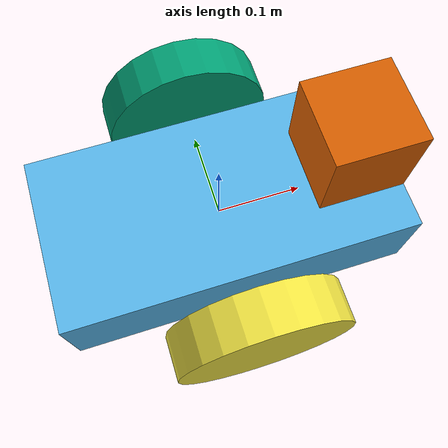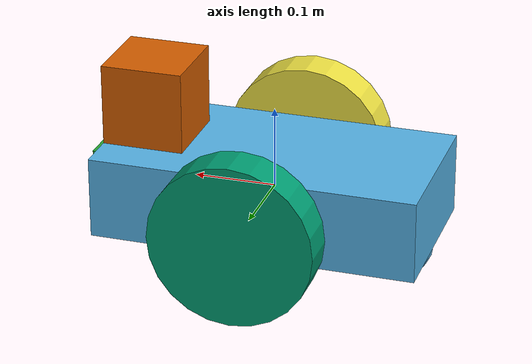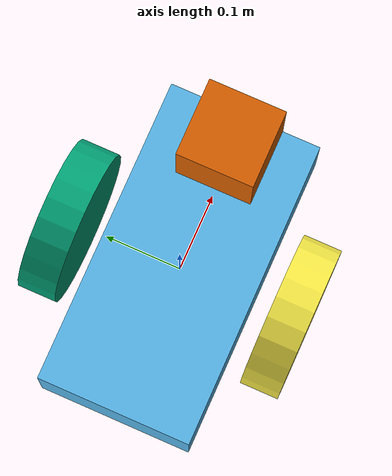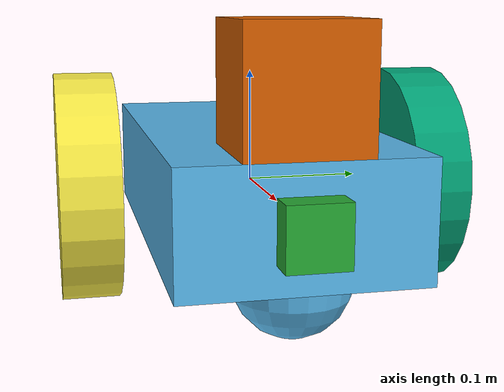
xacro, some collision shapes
<?xml version='1.0'?>

<robot name="udacity_bot" xmlns:xacro="http://www.ros.org/wiki/xacro">
<xacro:include filename="$(find udacity_bot)/urdf/udacity_bot.gazebo" />

  <link name="robot_footprint"></link>

  <joint name="robot_footprint_joint" type="fixed">
    <origin xyz="0 0 0" rpy="0 0 0" />
    <parent link="robot_footprint"/>
    <child link="chassis" />
  </joint>

  <link name='chassis'>
    <pose>0 0 0.1 0 0 0</pose>

    <inertial>
      <mass value="15.0"/>
      <origin xyz="0.0 0 0" rpy=" 0 0 0"/>
      <inertia
          ixx="0.1" ixy="0" ixz="0"
          iyy="0.1" iyz="0"
          izz="0.1"
      />
    </inertial>

    <collision name='collision'>
      <origin xyz="0 0 0" rpy=" 0 0 0"/>
      <geometry>
        <box size=".4 .2 .1"/>
      </geometry>
    </collision>

    <visual name='chassis_visual'>
      <origin xyz="0 0 0" rpy=" 0 0 0"/>
      <geometry>
        <box size=".4 .2 .1"/>
      </geometry>
    </visual>

    <collision name='back_caster_collision'>
      <origin xyz="-0.15 0 -0.049" rpy=" 0 0 0"/>
      <geometry>
        <sphere radius="0.05"/>
      </geometry>
      <surface>
        <friction>
          <ode>
            <mu>0</mu>
            <mu2>0</mu2>
            <slip1>1.0</slip1>
            <slip2>1.0</slip2>
          </ode>
        </friction>
      </surface>
    </collision>

    <visual name='back_caster_visual'>
      <origin xyz="-0.15 0 -0.049" rpy=" 0 0 0"/>
      <geometry>
        <sphere radius="0.049"/>
      </geometry>
    </visual>

    <collision name='front_caster_collision'>
      <origin xyz="0.15 0 -0.049" rpy=" 0 0 0"/>
      <geometry>
        <sphere radius="0.049"/>
      </geometry>
      <surface>
        <friction>
          <ode>
            <mu>0</mu>
            <mu2>0</mu2>
            <slip1>1.0</slip1>
            <slip2>1.0</slip2>
          </ode>
        </friction>
      </surface>
    </collision>

    <visual name='front_caster_visual'>
      <origin xyz="0.15 0 -0.049" rpy=" 0 0 0"/>
      <geometry>
        <sphere radius="0.049"/>
      </geometry>
    </visual>

  </link>

  <link name='side_wheel_left'>
    <inertial>
      <mass value="5.0"/>
      <origin xyz="0 0 0" rpy="0 1.5707 1.5707"/>
      <inertia
          ixx="0.1" ixy="0" ixz="0"
          iyy="0.1" iyz="0"
          izz="0.1"
      />
    </inertial>

    <visual name='side_wheel_left_visual'>
     <origin xyz="0 0 0" rpy=" 0 1.5707 1.5707"/>
     <geometry>
      <cylinder length="0.05" radius="0.1"/>
     </geometry>
    </visual>

    <collision name='side_wheel_left_collision'>
     <origin xyz="0 0 0" rpy=" 0 1.5707 1.5707"/>
     <geometry>
       <cylinder length="0.05" radius="0.1"/>
     </geometry>
    </collision>
  </link>

  <joint type="continuous" name="left_wheel_hinge">
    <origin xyz="0 0.15 0" rpy="0 0 0"/>
    <child link="side_wheel_left"/>
    <parent link="chassis"/>
    <axis xyz="0 1 0" rpy="0 0 0"/>
    <limit effort="10000" velocity="1000"/>
    <joint_properties damping="1.0" friction="1.0"/>
  </joint>

  <link name='side_wheel_right'>
    <inertial>
      <mass value="5.0"/>
      <origin xyz="0 0 0" rpy="0 1.5707 1.5707"/>
      <inertia
          ixx="0.1" ixy="0" ixz="0"
          iyy="0.1" iyz="0"
          izz="0.1"
      />
    </inertial>

    <visual name='side_wheel_right_visual'>
     <origin xyz="0 0 0" rpy=" 0 1.5707 1.5707"/>
     <geometry>
      <cylinder length="0.05" radius="0.1"/>
     </geometry>
    </visual>

    <collision name='side_wheel_right_collision'>
     <origin xyz="0 0 0" rpy=" 0 1.5707 1.5707"/>
     <geometry>
       <cylinder length="0.05" radius="0.1"/>
     </geometry>
    </collision>
  </link>

  <joint type="continuous" name="right_wheel_hinge">
    <origin xyz="0 -0.15 0" rpy="0 0 0"/>
    <child link="side_wheel_right"/>
    <parent link="chassis"/>
    <axis xyz="0 1 0" rpy="0 0 0"/>
    <limit effort="10000" velocity="1000"/>
    <joint_properties damping="1.0" friction="1.0"/>
  </joint>

  <link name='camera'>
    <inertial>
      <mass value="0.1"/>
      <origin xyz="0 0 0" rpy="0 0 0"/>
      <inertia
          ixx="1e-6" ixy="0" ixz="0"
          iyy="1e-6" iyz="0"
          izz="1e-6"
      />
    </inertial>

    <visual name='camera_visual'>
     <origin xyz="0 0 0" rpy=" 0 0 0"/>
     <geometry>
      <box size="0.05 0.05 0.05"/>
     </geometry>
    </visual>

    <collision name='camera_collision'>
     <origin xyz="0 0 0" rpy=" 0 0 0"/>
     <geometry>
      <box size="0.05 0.05 0.05"/>
     </geometry>
    </collision>

  </link>

  <joint type="fixed" name="camera_joint">
    <origin xyz="0.2 0 0" rpy="0 0 0"/>
    <child link="camera"/>
    <parent link="chassis"/>
    <axis xyz="0 1 0" rpy="0 0 0"/>
  </joint>

  <link name='hokuyo'>
    <inertial>
      <mass value="0.1"/>
      <origin xyz="0 0 0" rpy="0 0 0"/>
      <inertia
          ixx="1e-6" ixy="0" ixz="0"
          iyy="1e-6" iyz="0"
          izz="1e-6"
      />
    </inertial>

    <visual name='hokuyo_visual'>
     <origin xyz="0 0 0" rpy=" 0 0 0"/>
     <geometry>
      <mesh filename="package://udacity_bot/meshes/hokuyo.dae"/>
     </geometry>
    </visual>

    <collision name='hokuyo_collision'>
     <origin xyz="0 0 0" rpy=" 0 0 0"/>
     <geometry>
      <box size="0.1 0.1 0.1"/>
     </geometry>
    </collision>

  </link>

  <joint type="fixed" name="hokuyo_joint">
    <origin xyz="0.15 0 0.1" rpy="0 0 0"/>
    <child link="hokuyo"/>
    <parent link="chassis"/>
    <axis xyz="0 1 0" rpy="0 0 0"/>
  </joint>

</robot>
